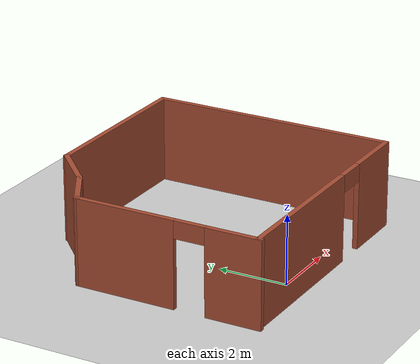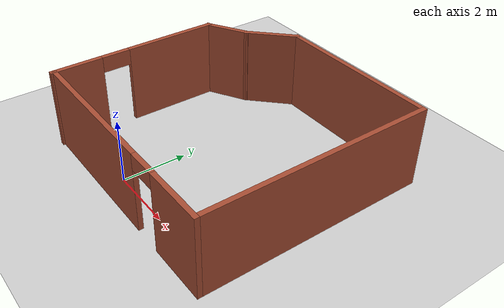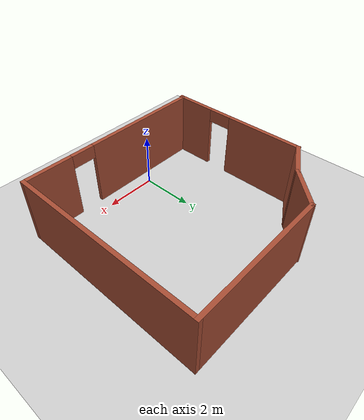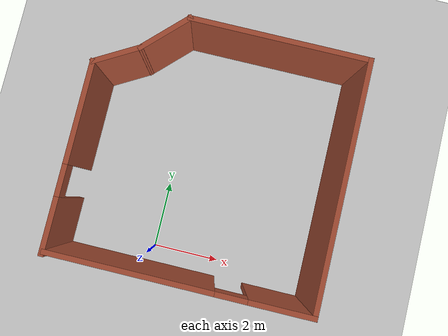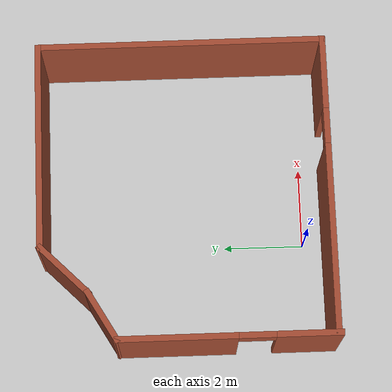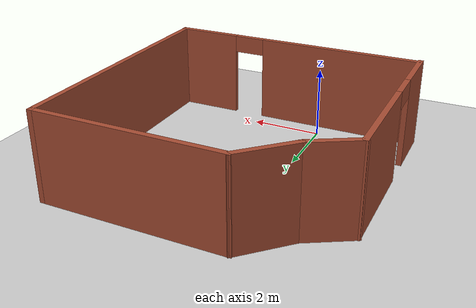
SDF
<sdf version="1.7">
 <world name="default">
  <light name="sun" type="directional">
   <pose>0 0 10 0 -0 0</pose>
   <diffuse>0.8 0.8 0.8 1</diffuse>
   <specular>0.2 0.2 0.2 1</specular>
   <attenuation>
    <range>1000</range>
    <constant>0.9</constant>
    <linear>0.01</linear>
    <quadratic>0.001</quadratic>
   </attenuation>
   <direction>-0.5 0.1 -0.9</direction>
   <spot><inner_angle>0</inner_angle><outer_angle>0</outer_angle><falloff>0</falloff></spot>
  </light>
  <model name="ground_plane">
   <static>1</static>
   <link name="link">
    <collision name="collision">
     <geometry><plane><normal>0 0 1</normal><size>100 100</size></plane></geometry>
     <surface><friction><ode><mu>100</mu><mu2>50</mu2></ode></friction></surface>
    </collision>
    <visual name="visual">
     <cast_shadows>0</cast_shadows>
     <geometry><plane><normal>0 0 1</normal><size>100 100</size></plane></geometry>
     <material>
      <script><uri>file://media/materials/scripts/gazebo.material</uri><name>Gazebo/Grey</name></script>
     </material>
    </visual>
   </link>
  </model>
  <gravity>0 0 -9.8</gravity>
  <magnetic_field>6e-06 2.3e-05 -4.2e-05</magnetic_field>
  <atmosphere type="adiabatic"/>
  <physics type="ode">
   <max_step_size>0.001</max_step_size>
   <real_time_factor>1</real_time_factor>
   <real_time_update_rate>1000</real_time_update_rate>
  </physics>
  <scene><ambient>0.4 0.4 0.4 1</ambient><background>0.7 0.7 0.7 1</background><shadows>1</shadows></scene>
  <audio><device>default</device></audio>
  <spherical_coordinates>
   <surface_model>EARTH_WGS84</surface_model>
   <latitude_deg>0</latitude_deg>
   <longitude_deg>0</longitude_deg>
   <elevation>0</elevation>
   <heading_deg>0</heading_deg>
  </spherical_coordinates>
  <model name="test">
   <pose>1.02962 2.96662 0 0 -0 0</pose>
   <link name="Wall_11">
    <collision name="Wall_11_Collision">
     <geometry><box><size>1.75 0.15 2.5</size></box></geometry>
     <pose>0 0 1.25 0 -0 0</pose>
    </collision>
    <visual name="Wall_11_Visual">
     <pose>0 0 1.25 0 -0 0</pose>
     <geometry><box><size>1.75 0.15 2.5</size></box></geometry>
     <material>
      <script><uri>file://media/materials/scripts/gazebo.material</uri><name>Gazebo/Bricks</name></script>
      <ambient>1 1 1 1</ambient>
     </material>
     <meta><layer>0</layer></meta>
    </visual>
    <pose>-1.95171 2.99697 0 0 -0 0.785398</pose>
   </link>
   <link name="Wall_12">
    <collision name="Wall_12_Collision">
     <geometry><box><size>5.25 0.15 2.5</size></box></geometry>
     <pose>0 0 1.25 0 -0 0</pose>
    </collision>
    <visual name="Wall_12_Visual">
     <pose>0 0 1.25 0 -0 0</pose>
     <geometry><box><size>5.25 0.15 2.5</size></box></geometry>
     <material>
      <script><uri>file://media/materials/scripts/gazebo.material</uri><name>Gazebo/Bricks</name></script>
      <ambient>1 1 1 1</ambient>
     </material>
     <meta><layer>0</layer></meta>
    </visual>
    <pose>1.16398 3.56265 0 0 -0 0</pose>
   </link>
   <link name="Wall_13">
    <collision name="Wall_13_Collision">
     <geometry><box><size>7.25 0.15 2.5</size></box></geometry>
     <pose>0 0 1.25 0 -0 0</pose>
    </collision>
    <visual name="Wall_13_Visual">
     <pose>0 0 1.25 0 -0 0</pose>
     <geometry><box><size>7.25 0.15 2.5</size></box></geometry>
     <material>
      <script><uri>file://media/materials/scripts/gazebo.material</uri><name>Gazebo/Bricks</name></script>
      <ambient>1 1 1 1</ambient>
     </material>
     <meta><layer>0</layer></meta>
    </visual>
    <pose>3.71398 0.012652 0 0 -0 -1.5708</pose>
   </link>
   <link name="Wall_14">
    <pose>0.038978 -3.53735 0 0 -0 3.14159</pose>
    <visual name="Wall_14_Visual_0">
     <pose>-2.80829 0 1.25 0 -0 0</pose>
     <geometry><box><size>1.88343 0.15 2.5</size></box></geometry>
     <material>
      <script><uri>file://media/materials/scripts/gazebo.material</uri><name>Gazebo/Bricks</name></script>
      <ambient>1 1 1 1</ambient>
     </material>
     <meta><layer>0</layer></meta>
    </visual>
    <collision name="Wall_14_Collision_0">
     <geometry><box><size>1.88343 0.15 2.5</size></box></geometry>
     <pose>-2.80829 0 1.25 0 -0 0</pose>
    </collision>
    <visual name="Wall_14_Visual_1">
     <pose>1.39171 0 1.25 0 -0 0</pose>
     <geometry><box><size>4.71657 0.15 2.5</size></box></geometry>
     <material>
      <script><uri>file://media/materials/scripts/gazebo.material</uri><name>Gazebo/Bricks</name></script>
      <ambient>1 1 1 1</ambient>
     </material>
     <meta><layer>0</layer></meta>
    </visual>
    <collision name="Wall_14_Collision_1">
     <geometry><box><size>4.71657 0.15 2.5</size></box></geometry>
     <pose>1.39171 0 1.25 0 -0 0</pose>
    </collision>
    <visual name="Wall_14_Visual_2">
     <pose>-1.41657 0 2.25 0 -0 0</pose>
     <geometry><box><size>0.9 0.15 0.5</size></box></geometry>
     <material>
      <script><uri>file://media/materials/scripts/gazebo.material</uri><name>Gazebo/Bricks</name></script>
      <ambient>1 1 1 1</ambient>
     </material>
     <meta><layer>0</layer></meta>
    </visual>
    <collision name="Wall_14_Collision_2">
     <geometry><box><size>0.9 0.15 0.5</size></box></geometry>
     <pose>-1.41657 0 2.25 0 -0 0</pose>
    </collision>
   </link>
   <link name="Wall_8">
    <pose>-3.68653 -0.918718 0 0 -0 1.5708</pose>
    <visual name="Wall_8_Visual_0">
     <pose>-1.94057 0 1.25 0 -0 0</pose>
     <geometry><box><size>1.61887 0.15 2.5</size></box></geometry>
     <material>
      <script><uri>file://media/materials/scripts/gazebo.material</uri><name>Gazebo/Bricks</name></script>
      <ambient>1 1 1 1</ambient>
     </material>
     <meta><layer>0</layer></meta>
    </visual>
    <collision name="Wall_8_Collision_0">
     <geometry><box><size>1.61887 0.15 2.5</size></box></geometry>
     <pose>-1.94057 0 1.25 0 -0 0</pose>
    </collision>
    <visual name="Wall_8_Visual_1">
     <pose>1.25943 0 1.25 0 -0 0</pose>
     <geometry><box><size>2.98113 0.15 2.5</size></box></geometry>
     <material>
      <script><uri>file://media/materials/scripts/gazebo.material</uri><name>Gazebo/Bricks</name></script>
      <ambient>1 1 1 1</ambient>
     </material>
     <meta><layer>0</layer></meta>
    </visual>
    <collision name="Wall_8_Collision_1">
     <geometry><box><size>2.98113 0.15 2.5</size></box></geometry>
     <pose>1.25943 0 1.25 0 -0 0</pose>
    </collision>
    <visual name="Wall_8_Visual_2">
     <pose>-0.681133 0 2.25 0 -0 0</pose>
     <geometry><box><size>0.9 0.15 0.5</size></box></geometry>
     <material>
      <script><uri>file://media/materials/scripts/gazebo.material</uri><name>Gazebo/Bricks</name></script>
      <ambient>1 1 1 1</ambient>
     </material>
     <meta><layer>0</layer></meta>
    </visual>
    <collision name="Wall_8_Collision_2">
     <geometry><box><size>0.9 0.15 0.5</size></box></geometry>
     <pose>-0.681133 0 2.25 0 -0 0</pose>
    </collision>
   </link>
   <link name="Wall_9">
    <collision name="Wall_9_Collision">
     <geometry><box><size>1.5 0.15 2.5</size></box></geometry>
     <pose>0 0 1.25 0 -0 0</pose>
    </collision>
    <visual name="Wall_9_Visual">
     <pose>0 0 1.25 0 -0 0</pose>
     <geometry><box><size>1.5 0.15 2.5</size></box></geometry>
     <material>
      <script><uri>file://media/materials/scripts/gazebo.material</uri><name>Gazebo/Bricks</name></script>
      <ambient>1 1 1 1</ambient>
     </material>
     <meta><layer>0</layer></meta>
    </visual>
    <pose>-3.10196 2.09378 0 0 -0 0.523599</pose>
   </link>
   <static>1</static>
  </model>
 </world>
</sdf>
